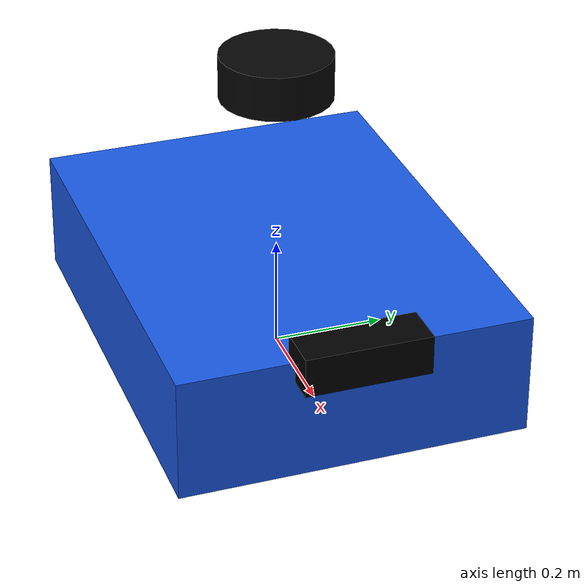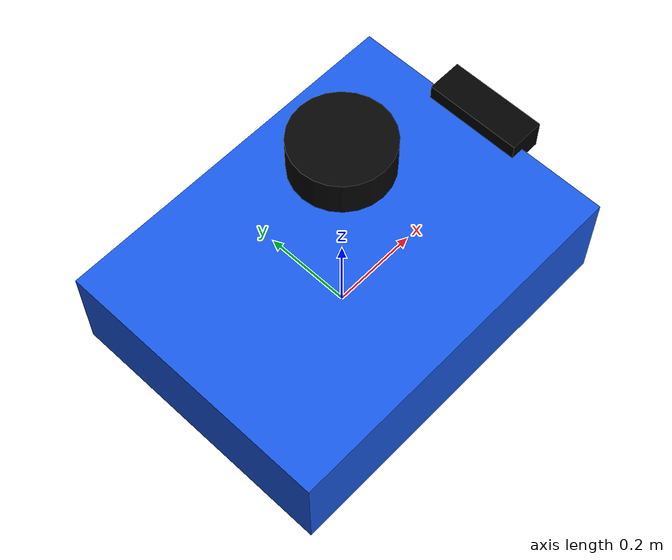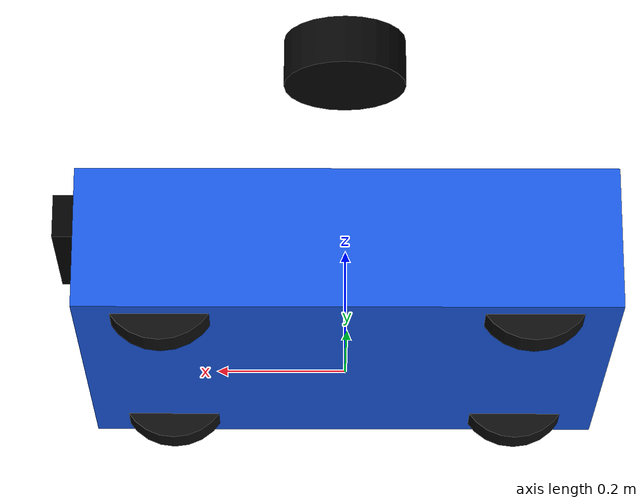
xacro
<?xml version="1.0"?>
<robot xmlns:xacro="http://ros.org/wiki/xacro" name="rangermini_simplified">

  <xacro:property name="base_length" value="0.82"/>
  <xacro:property name="base_width" value="0.62"/>
  <xacro:property name="base_height" value="0.22"/>

  <link name="base_link">
    <visual>
      <origin xyz="0 0 0.11" rpy="0 0 0"/>
      <geometry>
        <box size="${base_length} ${base_width} ${base_height}"/>
      </geometry>
      <material name="ranger_blue">
        <color rgba="0.1 0.35 0.9 1.0"/>
      </material>
    </visual>
    <collision>
      <origin xyz="0 0 0.11" rpy="0 0 0"/>
      <geometry>
        <box size="${base_length} ${base_width} ${base_height}"/>
      </geometry>
    </collision>
  </link>

  <link name="mid360s_link">
    <visual>
      <origin xyz="0 0 0.28" rpy="0 0 0"/>
      <geometry>
        <cylinder radius="0.10" length="0.08"/>
      </geometry>
      <material name="black">
        <color rgba="0.02 0.02 0.02 1.0"/>
      </material>
    </visual>
  </link>
  <joint name="mid360s_joint" type="fixed">
    <parent link="base_link"/>
    <child link="mid360s_link"/>
    <origin xyz="0 0 0.25" rpy="0 0 0"/>
  </joint>

  <link name="d435i_link">
    <visual>
      <origin xyz="0 0 0" rpy="0 0 0"/>
      <geometry>
        <box size="0.08 0.22 0.07"/>
      </geometry>
      <material name="camera_black">
        <color rgba="0.0 0.0 0.0 1.0"/>
      </material>
    </visual>
  </link>
  <joint name="d435i_joint" type="fixed">
    <parent link="base_link"/>
    <child link="d435i_link"/>
    <origin xyz="0.42 0 0.22" rpy="0 0 0"/>
  </joint>

  <xacro:macro name="wheel_visual" params="name x y">
    <link name="${name}">
      <visual>
        <origin xyz="0 0 0" rpy="1.5708 0 0"/>
        <geometry>
          <cylinder radius="0.09" length="0.055"/>
        </geometry>
        <material name="wheel_dark">
          <color rgba="0.05 0.05 0.05 1.0"/>
        </material>
      </visual>
    </link>
    <joint name="${name}_joint" type="fixed">
      <parent link="base_link"/>
      <child link="${name}"/>
      <origin xyz="${x} ${y} 0.05" rpy="0 0 0"/>
    </joint>
  </xacro:macro>

  <xacro:wheel_visual name="front_left_wheel"  x="0.28"  y="0.25"/>
  <xacro:wheel_visual name="front_right_wheel" x="0.28"  y="-0.25"/>
  <xacro:wheel_visual name="rear_left_wheel"   x="-0.28" y="0.25"/>
  <xacro:wheel_visual name="rear_right_wheel"  x="-0.28" y="-0.25"/>

</robot>
